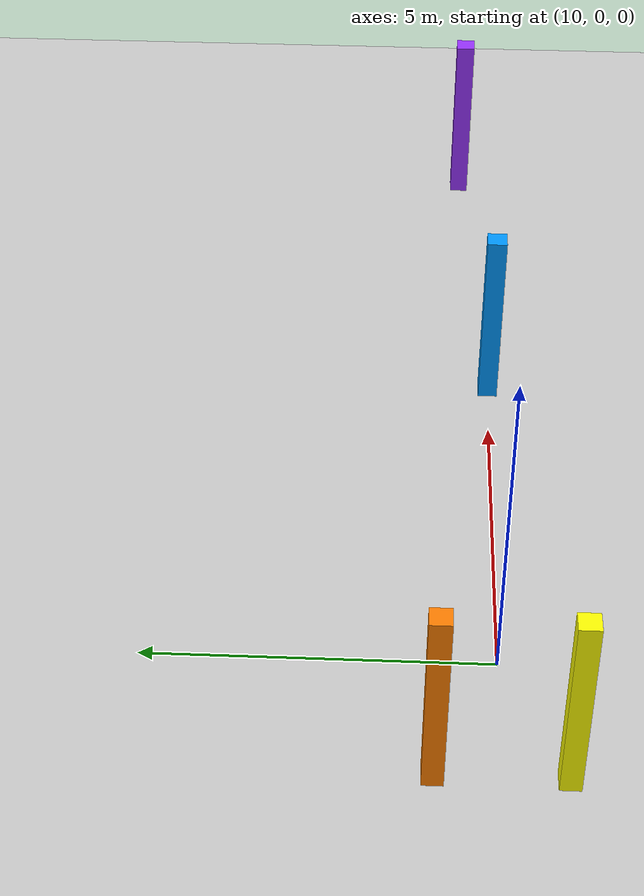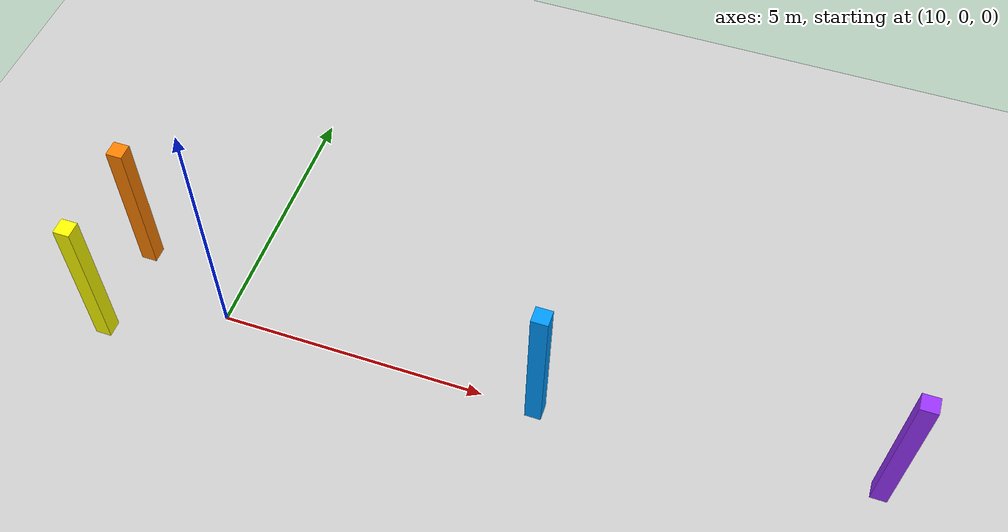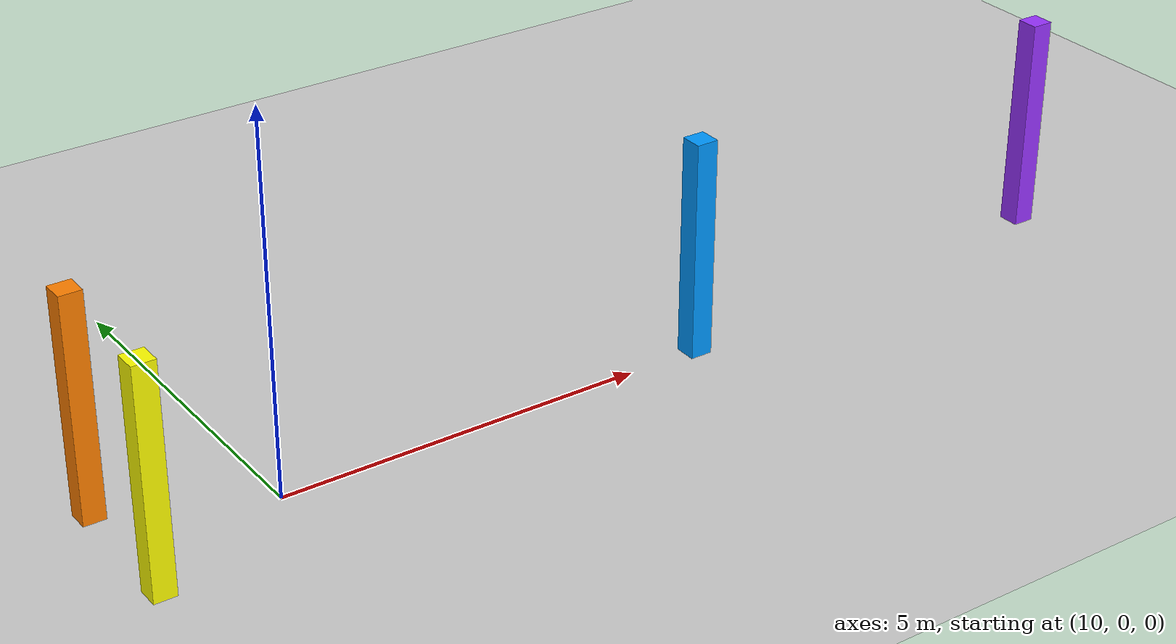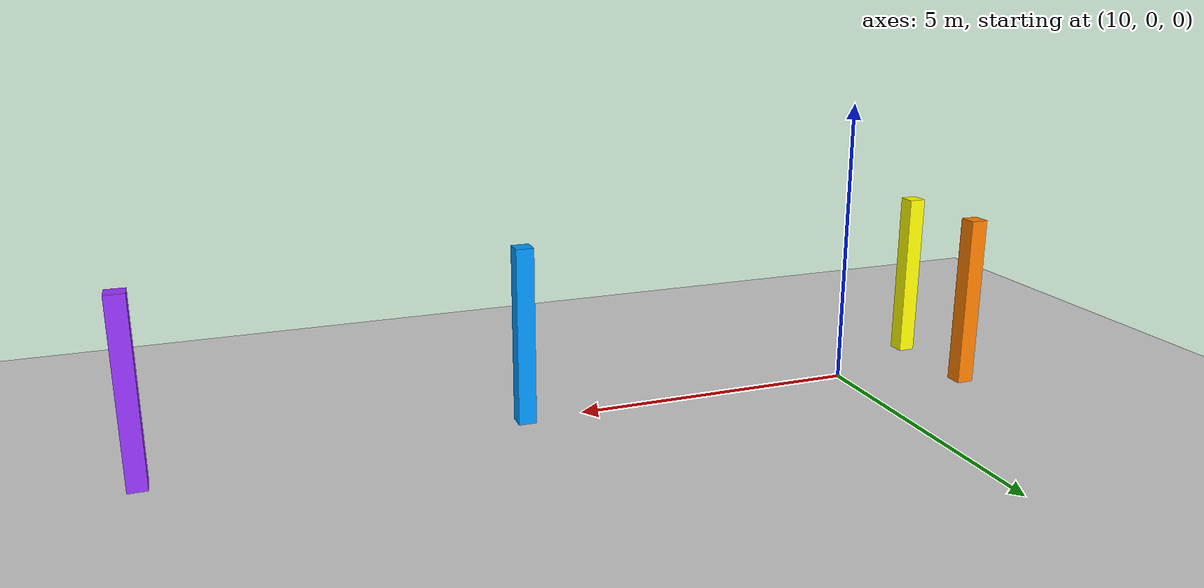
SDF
<sdf version="1.6">
 <world name="ground_world">
  <include><uri>model://sun</uri></include>
  <include><uri>model://ground_plane</uri></include>
  <model name="pole_1">
   <static>true</static>
   <pose>8.0 0.9 1.5 0 0 0</pose>
   <link name="link">
    <collision name="collision"><geometry><box><size>0.3 0.3 3</size></box></geometry></collision>
    <visual name="visual">
     <geometry><box><size>0.3 0.3 3</size></box></geometry>
     <material><ambient>1 0.5 0 1</ambient><diffuse>1 0.5 0 1</diffuse></material>
    </visual>
   </link>
  </model>
  <model name="pole_2">
   <static>true</static>
   <pose>8.0 -0.9 1.5 0 0 0</pose>
   <link name="link">
    <collision name="collision"><geometry><box><size>0.3 0.3 3</size></box></geometry></collision>
    <visual name="visual">
     <geometry><box><size>0.3 0.3 3</size></box></geometry>
     <material><ambient>1 1 0 1</ambient><diffuse>1 1 0 1</diffuse></material>
    </visual>
   </link>
  </model>
  <model name="pole_3">
   <static>true</static>
   <pose>16.0 0.0 1.5 0 0 0</pose>
   <link name="link">
    <collision name="collision"><geometry><box><size>0.3 0.3 3</size></box></geometry></collision>
    <visual name="visual">
     <geometry><box><size>0.3 0.3 3</size></box></geometry>
     <material><ambient>0 0.6 1 1</ambient><diffuse>0 0.6 1 1</diffuse></material>
    </visual>
   </link>
  </model>
  <model name="pole_4">
   <static>true</static>
   <pose>22.0 0.4 1.5 0 0 0</pose>
   <link name="link">
    <collision name="collision"><geometry><box><size>0.3 0.3 3</size></box></geometry></collision>
    <visual name="visual">
     <geometry><box><size>0.3 0.3 3</size></box></geometry>
     <material><ambient>0.6 0.2 1 1</ambient><diffuse>0.6 0.2 1 1</diffuse></material>
    </visual>
   </link>
  </model>
 </world>
</sdf>
